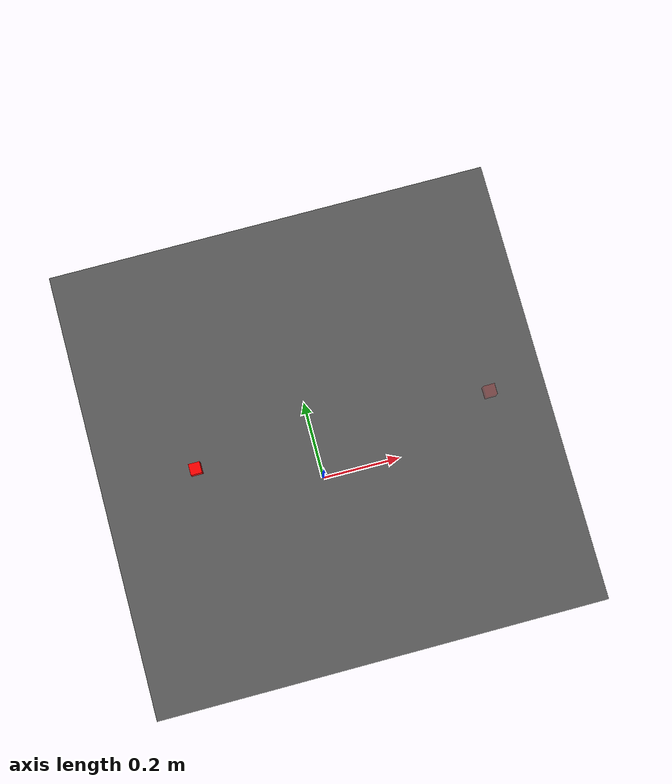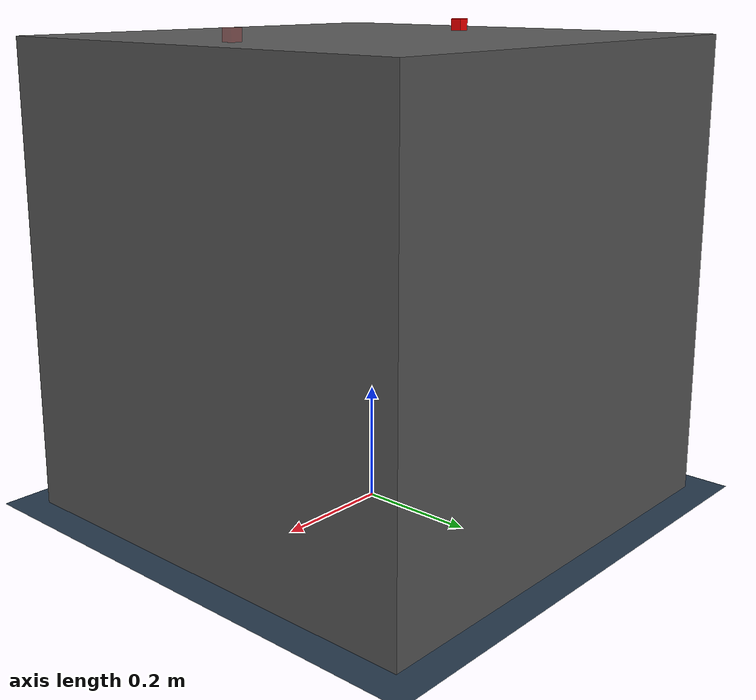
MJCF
<mujoco>
    <compiler angle="radian" meshdir="./meshes/" texturedir="./textures" coordinate="local" />
    <option timestep="0.002">
        <flag warmstart="enable"></flag>
    </option>

    <include file="shared.xml" />

    <worldbody>

        <geom name="ground" pos="0 0 0" size="5 5 10" material="MatGnd" type="plane" contype="0"
            conaffinity="0" />
        <body name="ground" pos="0 0 0">
            <site name="target0" pos="0.3 0 0.81" size="0.01 0.01 0.01" rgba="1 0 0 0.2"
                type="box"></site>
        </body>

        <body name="table" pos="0 0 0.4">
            <geom pos="0 0 0" size="0.4 0.4 0.4" type="box" group="0" mass="2000"
                material="table_mat" contype="1"
                conaffinity="1" />
        </body>

        <include file="mycobot280.xml" />

        <body name="object0" pos="-0.23 0 0.81">
            <joint name="object0:joint" type="free" damping="0.01"></joint>
            <geom size="0.01 0.01 0.01" type="box" condim="4" name="object0" material="block_mat"
                solimp="0.999 0.999 0.001" solref="0.001 1" friction="0.95 0.3 0.1"></geom>
            <site name="object0" pos="0 0 0" size="0.01 0.01 0.01" rgba="1 0 0 1" type="box"></site>
        </body>
        <light directional="true" ambient="0.5 0.5 0.5" diffuse="0.8 0.8 0.8" specular="0.3 0.3 0.3"
            castshadow="false" pos="0 0 4" dir="0 0 -1" name="light0"></light>

    </worldbody>
    <actuator>
        <general class="mycobot" name="actuator1" joint="robot0:joint1" gainprm="4500"
            biasprm="0 -4500 -450" />
        <general class="mycobot" name="actuator2" joint="robot0:joint2" gainprm="4500"
            biasprm="0 -4500 -450"
        />
        <general class="mycobot" name="actuator3" joint="robot0:joint3" gainprm="3500"
            biasprm="0 -3500 -350" />
        <general class="mycobot" name="actuator4" joint="robot0:joint4" gainprm="2000"
            biasprm="0 -2000 -200"
            forcerange="-12 12" />
        <general class="mycobot" name="actuator5" joint="robot0:joint5" gainprm="2000"
            biasprm="0 -2000 -200"
            forcerange="-12 12" />
        <general class="mycobot" name="actuator6" joint="robot0:joint6" gainprm="2000"
            biasprm="0 -2000 -200"
            forcerange="-12 12" />

        <general biastype="affine" name="fingers_actuator" tendon="split" forcerange="-5 5"
            ctrlrange="0 255" gainprm="0.27 0 0" biasprm="0 -100 -10" forcelimited="true"
            ctrllimited="true" />
    </actuator>
</mujoco>

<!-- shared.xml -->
<mujoco>
    <asset>
        <texture name="texplane" type="2d" builtin="checker" rgb1=".2 .3 .4" rgb2=".1 0.15 0.2"
            width="512" height="512" />
        <material name="MatGnd" reflectance="0.5" texture="texplane" texrepeat="1 1"
            texuniform="true" />
        <material name="block_mat" specular="0" shininess="0.5" reflectance="0" rgba="1 0 0 1"></material>
        <material name="table_mat" specular="0" shininess="0.5" reflectance="0"
            rgba="0.35 0.35 0.35 1"></material>
        <mesh name="base_link" file="base_link.STL" />
        <mesh name="link1" file="link1.STL" />
        <mesh name="link2" file="link2.STL" />
        <mesh name="link3" file="link3.STL" />
        <mesh name="link4" file="link4.STL" />
        <mesh name="link5" file="link5.STL" />
        <mesh name="link6" file="link6.STL" />
        <mesh name="flange" file="flange.STL" />
        <mesh name="gripper_base" file="gripper_base.STL" />
        <mesh name="right_gear_link" file="right_gear_link.STL" />
        <mesh name="right_finger_link" file="right_finger_link.STL" />
        <mesh name="left_gear_link" file="left_gear_link.STL" />
        <mesh name="left_finger_link" file="left_finger_link.STL" />
        <mesh name="right_hinge_link" file="right_hinge_link.STL" />
        <mesh name="left_hinge_link" file="left_hinge_link.STL" />
    </asset>

    <contact>
        <exclude body1="table" body2="mycobot" />
        <exclude body1="table" body2="ground" />
        <exclude body1="link6" body2="left_gear_link" />
        <exclude body1="link6"
            body2="right_gear_link" />
        <exclude body1="link6" body2="left_hinge_link" />
        <exclude body1="link6" body2="right_hinge_link" />
        <exclude body1="right_finger_link" body2="right_hinge_link" />
        <exclude body1="left_finger_link" body2="left_hinge_link" />
        <exclude body1="left_finger_link" body2="right_finger_link" />
        <exclude body1="right_gear_link" body2="left_gear_link" />
    </contact>

    <tendon>
        <fixed name="split">
            <joint joint="robot0:right_gear_joint" coef="0.5" />
            <joint joint="robot0:left_gear_joint" coef="0.5" />
        </fixed>
    </tendon>

    <equality>
        <connect anchor="0.021833 -0.005 -0.0072346" body1="right_finger_link"
            body2="right_hinge_link"
            solimp="0.95 0.99 0.001" solref="0.005 1" />
        <connect anchor="0.021833 -0.005 0.0072347" body1="left_finger_link"
            body2="left_hinge_link"
            solimp="0.95 0.99 0.001" solref="0.005 1" />
        <joint joint1="robot0:right_gear_joint" joint2="robot0:left_gear_joint" polycoef="0 1 0 0 0"
            solimp="0.95 0.99 0.001" solref="0.005 1" />
        <weld name="mocap_weld" body1="robot0:mocap" body2="gripper_tcp" solimp="0.9 0.95 0.001"
            solref="0.02 1"></weld>
    </equality>

    <default>
        <default class="mycobot">
            <joint armature="0.1" damping="1"
                range="-2.96706 2.96706"
                limited="true" />
            <general dyntype="none" biastype="affine" ctrlrange="-2.96706 2.96706"
                forcerange="-87 87" forcelimited="true" ctrllimited="true" />
        </default>
        <default class="driver">
            <joint range="0 0.7" armature="0.005" damping="0.1" solimplimit="0.95 0.99 0.001"
                solreflimit="0.005 1" limited="true" />
        </default>
        <default class="follower">
            <joint range="-0.872664 0.872664" pos="0 0 0" solimplimit="0.95 0.99 0.001"
                solreflimit="0.005 1" limited="true" />
        </default>
        <default class="coupler">
            <joint solimplimit="0.95 0.99 0.001"
                solreflimit="0.005 1" />
        </default>
    </default>
</mujoco>

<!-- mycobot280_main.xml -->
<mujoco>
  <compiler angle="radian" meshdir="./meshes/" texturedir="./textures" coordinate="local" />
  <option timestep="0.002">
    <flag warmstart="enable"></flag>
  </option>
  <asset>
    <texture type="skybox" builtin="flat" rgb1="0.9 0.95 0.95" rgb2="0 0 0" width="64"
      height="1024" />

    <mesh name="base_link" file="base_link.STL" />
    <mesh name="link1" file="link1.STL" />
    <mesh name="link2" file="link2.STL" />
    <mesh name="link3" file="link3.STL" />
    <mesh name="link4" file="link4.STL" />
    <mesh name="link5" file="link5.STL" />
    <mesh name="link6" file="link6.STL" />
    <mesh name="flange" file="flange.STL" />
    <mesh name="gripper_base" file="gripper_base.STL" />
    <mesh name="right_gear_link" file="right_gear_link.STL" />
    <mesh name="right_finger_link" file="right_finger_link.STL" />
    <mesh name="left_gear_link" file="left_gear_link.STL" />
    <mesh name="left_finger_link" file="left_finger_link.STL" />
    <mesh name="right_hinge_link" file="right_hinge_link.STL" />
    <mesh name="left_hinge_link" file="left_hinge_link.STL" />
  </asset>

  <contact>
    <exclude body1="link6" body2="left_gear_link" />
    <exclude body1="link6"
      body2="right_gear_link" />
    <exclude body1="link6" body2="left_hinge_link" />
    <exclude body1="link6" body2="right_hinge_link" />
    <exclude body1="right_finger_link" body2="right_hinge_link" />
    <exclude body1="left_finger_link" body2="left_hinge_link" />
    <exclude body1="left_finger_link" body2="right_finger_link" />
    <exclude body1="right_gear_link" body2="left_gear_link" />
  </contact>

  <tendon>
    <fixed name="split">
      <joint joint="robot0:right_gear_joint" coef="0.5" />
      <joint joint="robot0:left_gear_joint" coef="0.5" />
    </fixed>
  </tendon>

  <equality>
    <connect anchor="0.021833 -0.005 -0.0072346" body1="right_finger_link"
      body2="right_hinge_link"
      solimp="0.95 0.99 0.001" solref="0.005 1" />
    <connect anchor="0.021833 -0.005 0.0072347" body1="left_finger_link"
      body2="left_hinge_link"
      solimp="0.95 0.99 0.001" solref="0.005 1" />
    <joint joint1="robot0:right_gear_joint" joint2="robot0:left_gear_joint" polycoef="0 1 0 0 0"
      solimp="0.95 0.99 0.001" solref="0.005 1" />
  </equality>

  <default>
    <default class="mycobot">
      <joint armature="0.1" damping="1"
        range="-2.96706 2.96706"
        limited="true" />
      <general dyntype="none" biastype="affine" ctrlrange="-2.96706 2.96706"
        forcerange="-87 87" forcelimited="true" ctrllimited="true" />
    </default>
    <default class="driver">
      <joint range="0 0.7" armature="0.005" damping="0.1" solimplimit="0.95 0.99 0.001"
        solreflimit="0.005 1" limited="true" />
    </default>
    <default class="follower">
      <joint range="-0.872664 0.872664" pos="0 0 0" solimplimit="0.95 0.99 0.001"
        solreflimit="0.005 1" limited="true" />
    </default>
    <default class="coupler">
      <joint solimplimit="0.95 0.99 0.001"
        solreflimit="0.005 1" />
    </default>
  </default>

  <worldbody>

    <geom type="plane" size="2 2 2" pos="0 0 0" rgba="0.2 0.2 0.2 1" />

    <site name="target0" pos="-0.15 0 0.21" size="0.01 0.01 0.01" rgba="0 1 0 1"
      type="box"></site>

    <body name="table" pos="0 0 0">
      <geom pos="0 0 0" size="0.2 0.25 0.2" type="box" group="0" mass="0" conaffinity="1"
        rgba="0.0 0.0 0.0 1" />
    </body>

    <camera name="corner1" pos="0.508 0.500 0.718" xyaxes="-0.688 0.725 -0.000 -0.394 -0.373 0.840" />

    <!-- back view -->
    <camera name="backview" pos="0.7 0.009 0.777"
      xyaxes="0.010 1.000 -0.000 -0.6 0.005 0.868" />
    <!-- front view -->
    <camera name="frontview" pos="-0.7 -0.009 0.777"
      xyaxes="0.010 -1.000 -0.000 0.6 0.005 0.868" />
    <!-- bird view -->
    <camera mode="fixed" name="birdview" pos="0 -0.01 0.8" quat="0.7071 0 0 0.7071" />
    <!-- side view -->
    <camera name="sideview" pos="0.006 0.640 0.784" xyaxes="-1.000 0.005 -0.000 -0.003 -0.652 0.834" />

    <body name="mycobot" childclass="mycobot" pos="0 -0.2 0.2" quat="1 0 0 1">
      <geom type="mesh" group="1" density="0"
        rgba="0.792157 0.819608 0.933333 1" mesh="base_link" />
      <geom type="mesh" rgba="0.792157 0.819608 0.933333 1" mesh="base_link" />
      <body name="link1" pos="0 -0.0038673 0.0774">
        <inertial pos="0.00714921 -2.49114e-06 0.0385507"
          quat="0.979105 -0.000345724 0.203355 0.000174858" mass="0.0427369"
          diaginertia="4.25453e-05 3.72465e-05 1.28094e-05" />
        <joint name="robot0:joint1" pos="0 0 0" axis="0 0 -1" />
        <geom type="mesh" group="1" density="0"
          rgba="0.792157 0.819608 0.933333 1" mesh="link1" />
        <geom type="mesh" rgba="0.792157 0.819608 0.933333 1" mesh="link1" />
        <body name="link2" pos="0.03862 0 0.06">
          <inertial pos="0.0195673 -3.76182e-08 0.0516249"
            quat="0.999998 9.2767e-05 -0.00200461 9.66169e-05" mass="0.0668491"
            diaginertia="0.000167029 0.000158388 2.06202e-05" />
          <joint name="robot0:joint2" pos="0 0 0" axis="-1 0 0" />
          <geom type="mesh" group="1" density="0"
            rgba="0.792157 0.819608 0.933333 1" mesh="link2" />
          <geom type="mesh" rgba="0.792157 0.819608 0.933333 1" mesh="link2" />
          <body name="link3" pos="-0.006664 0 0.11">
            <inertial pos="-0.0231609 -5.61244e-07 0.0437186"
              quat="0.999737 3.49095e-05 -0.0229275 4.08218e-05" mass="0.0533251"
              diaginertia="0.000101777 9.73985e-05 1.35127e-05" />
            <joint name="robot0:joint3" pos="0 0 0" axis="1 0 0" />
            <geom type="mesh" group="1" density="0"
              rgba="0.792157 0.819608 0.933333 1" mesh="link3" />
            <geom type="mesh" rgba="0.792157 0.819608 0.933333 1" mesh="link3" />
            <body name="link4" pos="0.00046458 0 0.096">
              <inertial pos="0.0195553 1.43402e-05 0.00768729"
                quat="0.000387903 0.385562 0.000244078 0.922682" mass="0.0240612"
                diaginertia="1.10891e-05 9.32651e-06 4.46821e-06" />
              <joint name="robot0:joint4" pos="0 0 0" axis="-1 0 0" />
              <geom type="mesh" group="1" density="0"
                rgba="0.792157 0.819608 0.933333 1" mesh="link4" />
              <geom type="mesh" rgba="0.792157 0.819608 0.933333 1" mesh="link4" />
              <body name="link5" pos="0.03006 0 0.03263">
                <inertial pos="2.48381e-05 -7.55802e-05 0.0267714"
                  quat="0.975475 0.00322907 0.220035 0.00469099" mass="0.0327884"
                  diaginertia="1.48708e-05 1.33354e-05 7.13883e-06" />
                <joint name="robot0:joint5" pos="0 0 0" axis="0 0 -1" />
                <geom type="mesh" group="1" density="0"
                  rgba="0.792157 0.819608 0.933333 1" mesh="link5" />
                <geom type="mesh" rgba="0.792157 0.819608 0.933333 1" mesh="link5" />
                <body name="link6" pos="0.026166 0 0.03733">
                  <inertial pos="0.0417978 -0.00630034 -0.000526342"
                    quat="-0.179978 0.674045 0.238998 0.675389"
                    mass="0.0649501"
                    diaginertia="5.36781e-05 5.12254e-05 2.74582e-05" />
                  <joint name="robot0:joint6" pos="0 0 0" axis="-1 0 0" />
                  <geom type="mesh" group="1" density="0"
                    rgba="0.792157 0.819608 0.933333 1" mesh="link6" />
                  <geom type="mesh" rgba="0.792157 0.819608 0.933333 1" mesh="link6" />
                  <body name="flange">
                    <geom type="mesh" group="1" density="0"
                      rgba="0.792157 0.819608 0.933333 1" mesh="flange" />
                    <geom type="mesh" rgba="0.792157 0.819608 0.933333 1" mesh="flange" />
                    <body name="gripper_camera_rgb_frame" pos="0.025 -0.043 0">
                      <body name="gripper_camera_rgb_optical_frame" pos="0 0 0"
                        quat="0.5 -0.5 0.5 -0.5">
                        <camera euler="3.1415 0 0" fovy="50" name="gripper_camera_rgb" pos="0 0 0"></camera>
                      </body>
                    </body>
                    <body name="gripper_camera_depth_frame" pos="0 0.045 0">
                      <body name="gripper_camera_depth_optical_frame" pos="0 0 0"
                        quat="0.5 -0.5 0.5 -0.5"></body>
                    </body>
                    <body euler="0 0 0" name="gripper_base">
                      <body name="gripper_tcp" pos="0.13 -0.01 -0.001" />
                      <geom type="mesh" group="1" density="0"
                        rgba="0.792157 0.819608 0.933333 1" mesh="gripper_base" />
                      <geom type="mesh" rgba="0.792157 0.819608 0.933333 1" mesh="gripper_base" />
                      <body name="right_gear_link" pos="0.0626 -0.00505 0.01225">
                        <inertial pos="0.00313636 0.0026671 0.00586855"
                          quat="0.681896 0.190756 0.185171 0.681426" mass="0.00306867"
                          diaginertia="5.4546e-07 4.35596e-07 1.20909e-07" />
                        <joint name="robot0:right_gear_joint" pos="0 0 0" axis="0 1 0"
                          class="driver" />
                        <geom type="mesh" group="1" density="0"
                          rgba="0.792157 0.819608 0.933333 1" mesh="right_gear_link" />
                        <geom type="mesh" rgba="0.792157 0.819608 0.933333 1" mesh="right_gear_link" />
                        <body name="right_finger_link" pos="0.015573 -0.01 0.026804">
                          <inertial pos="0.0324451 0.005 -0.0109997" quat="0 0.775032 0 0.631922"
                            mass="0.00694636" diaginertia="1.60061e-06 1.45682e-06 2.82185e-07" />
                          <joint name="right_finger_joint" pos="0 0 0" axis="0 -1 0"
                            class="follower" />
                          <geom type="mesh" group="1" density="0"
                            rgba="0.792157 0.819608 0.933333 1" mesh="right_finger_link" />
                          <geom type="mesh" rgba="0.792157 0.819608 0.933333 1"
                            mesh="right_finger_link" />
                          <body name="right_finger_layer">
                            <geom name="right_finger_layer" type="box" size="0.013 0.01 0.001"
                              pos="0.041 0.005 -0.021"
                              condim="4" friction="2 0.3 0.1"
                              solref="-20000 -500"
                              solimp="0.999 0.999 0.001"></geom>
                          </body>
                        </body>
                      </body>
                      <body name="left_gear_link" pos="0.0626 -0.00505 -0.01325">
                        <inertial pos="0.00282687 0.00252761 -0.00562195"
                          quat="0.681488 -0.18894 -0.188164 0.68152" mass="0.00317605"
                          diaginertia="5.58215e-07 4.42379e-07 1.28181e-07" />
                        <joint name="robot0:left_gear_joint" pos="0 0 0" axis="0 -1 0"
                          class="driver" />
                        <geom type="mesh" group="1" density="0"
                          rgba="0.792157 0.819608 0.933333 1" mesh="left_gear_link" />
                        <geom type="mesh" rgba="0.792157 0.819608 0.933333 1" mesh="left_gear_link" />
                        <body name="left_finger_link" pos="0.015455 -0.01 -0.026873">
                          <inertial pos="0.0324451 0.005 0.0109997" quat="0 0.631922 0 0.775032"
                            mass="0.00694636" diaginertia="1.60061e-06 1.45682e-06 2.82185e-07" />
                          <joint name="left_finger_joint" pos="0 0 0" axis="0 1 0"
                            class="follower" />
                          <geom type="mesh" group="1" density="0"
                            rgba="0.792157 0.819608 0.933333 1" mesh="left_finger_link" />
                          <geom type="mesh" rgba="0.792157 0.819608 0.933333 1"
                            mesh="left_finger_link" />
                          <body name="left_finger_layer">
                            <geom name="left_finger_layer" type="box" size="0.013 0.01 0.001"
                              pos="0.041 0.005 0.021"
                              condim="4" friction="2 0.3 0.1" solref="-20000 -500"
                              solimp="0.999 0.999 0.001"></geom>
                          </body>
                        </body>
                      </body>
                      <body name="right_hinge_link" pos="0.08443 -0.02005 0.005">
                        <inertial pos="0.00766814 0.00999994 0.0132034" quat="0.965593 0 0.260056 0"
                          mass="0.00272533" diaginertia="4.80195e-07 3.55161e-07 1.60795e-07" />
                        <joint name="right_hinge_joint" pos="0 0 0" axis="0 1 0"
                          class="coupler" />
                        <geom type="mesh" group="1" density="0"
                          rgba="0.792157 0.819608 0.933333 1" mesh="right_hinge_link" />
                        <geom type="mesh" rgba="0.792157 0.819608 0.933333 1"
                          mesh="right_hinge_link" />
                      </body>
                      <body name="left_hinge_link" pos="0.08443 -0.02005 -0.006">
                        <inertial pos="0.00784767 0.00999994 -0.013651"
                          quat="0.966166 0 -0.257923 0"
                          mass="0.00272533" diaginertia="4.80195e-07 3.55161e-07 1.60795e-07" />
                        <joint name="left_hinge_joint" pos="0 0 0" axis="0 1 0" class="coupler" />
                        <geom type="mesh" group="1" density="0"
                          rgba="0.792157 0.819608 0.933333 1" mesh="left_hinge_link" />
                        <geom type="mesh" rgba="0.792157 0.819608 0.933333 1" mesh="left_hinge_link" />
                      </body>
                      <site name="EEF" pos="0.13 -0.01 -0.001" rgba="0 0 1 1"
                        size="0.001 0.001 0.001" />
                    </body>
                  </body>
                </body>
              </body>
            </body>
          </body>
        </body>
      </body>
    </body>

    <body name="object0" pos="-0.05 0 0.21">
      <joint name="object0:joint" type="free" damping="0.01"></joint>
      <geom size="0.01 0.01 0.01" type="box" condim="4" name="object0"
        solimp="0.999 0.999 0.001" solref="0.001 1" friction="0.95 0.3 0.1"></geom>
      <site name="object0" pos="0 0 0" size="0.01 0.01 0.01" rgba="1 1 1 1" type="box"></site>
    </body>
    <light directional="true" ambient="0.5 0.5 0.5" diffuse="0.8 0.8 0.8" specular="0.3 0.3
    0.3"
      castshadow="false" pos="0 0 4" dir="0 0 -1" name="light0"></light>
  </worldbody>
</mujoco>

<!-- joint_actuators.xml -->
<mujoco>
    <actuator>
        <general class="mycobot" name="actuator1" joint="robot0:joint1" gainprm="4500"
            biasprm="0 -4500 -450" />
        <general class="mycobot" name="actuator2" joint="robot0:joint2" gainprm="4500"
            biasprm="0 -4500 -450"
        />
        <general class="mycobot" name="actuator3" joint="robot0:joint3" gainprm="3500"
            biasprm="0 -3500 -350" />
        <general class="mycobot" name="actuator4" joint="robot0:joint4" gainprm="2000"
            biasprm="0 -2000 -200"
            forcerange="-12 12" />
        <general class="mycobot" name="actuator5" joint="robot0:joint5" gainprm="2000"
            biasprm="0 -2000 -200"
            forcerange="-12 12" />
        <general class="mycobot" name="actuator6" joint="robot0:joint6" gainprm="2000"
            biasprm="0 -2000 -200"
            forcerange="-12 12" />

        <general biastype="affine" name="fingers_actuator" tendon="split" forcerange="-5 5"
            ctrlrange="0 1" gainprm="70 0 0" biasprm="0 -100 -10" forcelimited="true"
            ctrllimited="true" />
    </actuator>
</mujoco>

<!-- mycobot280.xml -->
<mujoco>
  <include file="mycobot280_main.xml" />
  <include file="joint_actuators.xml" />
  <keyframe>
    <key name="fetch_env"
      qpos='-1.53825 -0.641282 0.0433963 -0.872323 1.56575 1.56731 0.000252284 0.00058776 0.000252672 -0.000188413 0.000429246 -0.00048648 0.1 -8.13492e-16 0.209981 1 -6.01422e-16 6.04142e-17 -2.59125e-14'
      qvel="0 0 0 0 0 0 0 0 0 0 0 0 0 0 0 0 0 0"
      ctrl="-1.55902942e+00 -6.00806595e-01 -8.66798778e-03 -8.63875032e-01 1.57012168e+00  1.56181935e+00 0.0"></key>
  </keyframe>
</mujoco>
